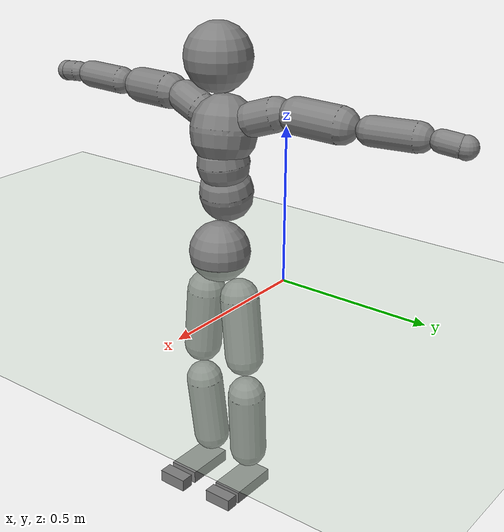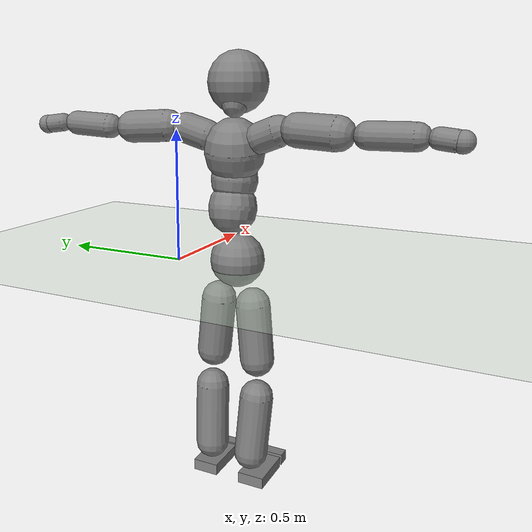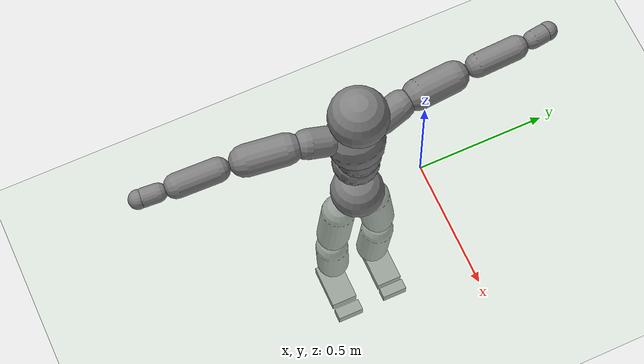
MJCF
<mujoco model="humanoid">
  <compiler coordinate="local"/>
  <statistic extent="2" center="0 0 1"/>
  <option timestep="0.00555"/>
  <default>
    <motor ctrlrange="-1 1" ctrllimited="true"/>
    <geom type="capsule" condim="1" friction="1.0 0.05 0.05" solimp=".9 .99 .003" solref=".015 1"/>
    <joint type="hinge" damping="0.1" stiffness="5" armature=".007" limited="true" solimplimit="0 .99 .01"/>
    <site size=".04" group="3"/>
    <default class="force-torque">
      <site type="box" size=".01 .01 .02" rgba="1 0 0 1"/>
    </default>
    <default class="touch">
      <site type="capsule" rgba="0 0 1 .3"/>
    </default>
  </default>
  <asset>
    <texture type="skybox" builtin="gradient" rgb1=".4 .5 .6" rgb2="0 0 0" width="100" height="100"/>
    <texture builtin="flat" height="1278" mark="cross" markrgb="1 1 1" name="texgeom" random="0.01" rgb1="0.8 0.6 0.4" rgb2="0.8 0.6 0.4" type="cube" width="127"/>
    <texture builtin="checker" height="100" name="texplane" rgb1="0 0 0" rgb2="0.8 0.8 0.8" type="2d" width="100"/>
    <material name="MatPlane" reflectance="0.5" shininess="1" specular="1" texrepeat="60 60" texture="texplane"/>
    <material name="geom" texture="texgeom" texuniform="true"/>
  </asset>
  <worldbody>
    <light cutoff="100" diffuse="1 1 1" dir="-0 0 -1.3" directional="true" exponent="1" pos="0 0 1.3" specular=".1 .1 .1"/>
    <geom conaffinity="1" condim="3" name="floor" pos="0 0 0" rgba="0.8 0.9 0.8 1" size="100 100 .2" type="plane" material="MatPlane"/>
    <body name="Pelvis" pos="-0.0023 -0.2585 0.0324">
      <freejoint name="Pelvis"/>
      <geom type="sphere" contype="1" conaffinity="1" density="500" size="0.1024" pos="0.0000 0.0000 0.0000"/>
      <body name="L_Hip" pos="-0.0168 0.0624 -0.0841">
        <joint name="L_Hip_x" type="hinge" pos="0 0 0" axis="1 0 0" stiffness="800" damping="80" armature="0.02" range="-180.0000 180.0000"/>
        <joint name="L_Hip_y" type="hinge" pos="0 0 0" axis="0 1 0" stiffness="800" damping="80" armature="0.02" range="-180.0000 180.0000"/>
        <joint name="L_Hip_z" type="hinge" pos="0 0 0" axis="0 0 1" stiffness="800" damping="80" armature="0.02" range="-180.0000 180.0000"/>
        <geom type="capsule" contype="1" conaffinity="1" density="500" fromto="0.0009 0.0075 -0.0721 0.0035 0.0299 -0.2883" size="0.0656"/>
        <body name="L_Knee" pos="0.0043 0.0374 -0.3604">
          <joint name="L_Knee_x" type="hinge" pos="0 0 0" axis="1 0 0" stiffness="800" damping="80" armature="0.02" range="-5.6250 5.6250"/>
          <joint name="L_Knee_y" type="hinge" pos="0 0 0" axis="0 1 0" stiffness="800" damping="80" armature="0.02" range="-180.0000 180.0000"/>
          <joint name="L_Knee_z" type="hinge" pos="0 0 0" axis="0 0 1" stiffness="800" damping="80" armature="0.02" range="-5.6250 5.6250"/>
          <geom type="capsule" contype="1" conaffinity="1" density="500" fromto="-0.0080 -0.0032 -0.0798 -0.0321 -0.0126 -0.3193" size="0.0647"/>
          <body name="L_Ankle" pos="-0.0401 -0.0158 -0.3992">
            <joint name="L_Ankle_x" type="hinge" pos="0 0 0" axis="1 0 0" stiffness="800" damping="80" armature="0.02" range="-180.0000 180.0000"/>
            <joint name="L_Ankle_y" type="hinge" pos="0 0 0" axis="0 1 0" stiffness="800" damping="80" armature="0.02" range="-180.0000 180.0000"/>
            <joint name="L_Ankle_z" type="hinge" pos="0 0 0" axis="0 0 1" stiffness="800" damping="80" armature="0.02" range="-180.0000 180.0000"/>
            <geom type="box" contype="1" conaffinity="1" density="500" pos="0.0606 0.0170 -0.0287" size="0.0891 0.051 0.0224" quat="1.0000 0.0000 0.0000 0.0000"/>
            <body name="L_Toe" pos="0.1212 0.034 -0.0575">
              <joint name="L_Toe_x" type="hinge" pos="0 0 0" axis="1 0 0" stiffness="500" damping="50" armature="0.02" range="-5.6250 5.6250"/>
              <joint name="L_Toe_y" type="hinge" pos="0 0 0" axis="0 1 0" stiffness="500" damping="50" armature="0.02" range="-90.0000 90.0000"/>
              <joint name="L_Toe_z" type="hinge" pos="0 0 0" axis="0 0 1" stiffness="500" damping="50" armature="0.02" range="-5.6250 5.6250"/>
              <geom type="box" contype="1" conaffinity="1" density="500" pos="0.0616 -0.0170 0.0279" size="0.0215 0.0506 0.0216" quat="1.0000 0.0000 0.0000 0.0000"/>
            </body>
          </body>
        </body>
      </body>
      <body name="R_Hip" pos="-0.0121 -0.0649 -0.0919">
        <joint name="R_Hip_x" type="hinge" pos="0 0 0" axis="1 0 0" stiffness="800" damping="80" armature="0.02" range="-180.0000 180.0000"/>
        <joint name="R_Hip_y" type="hinge" pos="0 0 0" axis="0 1 0" stiffness="800" damping="80" armature="0.02" range="-180.0000 180.0000"/>
        <joint name="R_Hip_z" type="hinge" pos="0 0 0" axis="0 0 1" stiffness="800" damping="80" armature="0.02" range="-180.0000 180.0000"/>
        <geom type="capsule" contype="1" conaffinity="1" density="500" fromto="-0.0014 -0.0074 -0.0721 -0.0057 -0.0297 -0.2886" size="0.0653"/>
        <body name="R_Knee" pos="-0.0072 -0.0372 -0.3607">
          <joint name="R_Knee_x" type="hinge" pos="0 0 0" axis="1 0 0" stiffness="800" damping="80" armature="0.02" range="-5.6250 5.6250"/>
          <joint name="R_Knee_y" type="hinge" pos="0 0 0" axis="0 1 0" stiffness="800" damping="80" armature="0.02" range="-180.0000 180.0000"/>
          <joint name="R_Knee_z" type="hinge" pos="0 0 0" axis="0 0 1" stiffness="800" damping="80" armature="0.02" range="-5.6250 5.6250"/>
          <geom type="capsule" contype="1" conaffinity="1" density="500" fromto="-0.0074 0.0038 -0.0787 -0.0296 0.0153 -0.3147" size="0.0646"/>
          <body name="R_Ankle" pos="-0.0369 0.0191 -0.3934">
            <joint name="R_Ankle_x" type="hinge" pos="0 0 0" axis="1 0 0" stiffness="800" damping="80" armature="0.02" range="-180.0000 180.0000"/>
            <joint name="R_Ankle_y" type="hinge" pos="0 0 0" axis="0 1 0" stiffness="800" damping="80" armature="0.02" range="-180.0000 180.0000"/>
            <joint name="R_Ankle_z" type="hinge" pos="0 0 0" axis="0 0 1" stiffness="800" damping="80" armature="0.02" range="-180.0000 180.0000"/>
            <geom type="box" contype="1" conaffinity="1" density="500" pos="0.0643 -0.0174 -0.0295" size="0.0888 0.0527 0.0222" quat="1.0000 0.0000 0.0000 0.0000"/>
            <body name="R_Toe" pos="0.1286 -0.0348 -0.0589">
              <joint name="R_Toe_x" type="hinge" pos="0 0 0" axis="1 0 0" stiffness="500" damping="50" armature="0.02" range="-5.6250 5.6250"/>
              <joint name="R_Toe_y" type="hinge" pos="0 0 0" axis="0 1 0" stiffness="500" damping="50" armature="0.02" range="-90.0000 90.0000"/>
              <joint name="R_Toe_z" type="hinge" pos="0 0 0" axis="0 0 1" stiffness="500" damping="50" armature="0.02" range="-5.6250 5.6250"/>
              <geom type="box" contype="1" conaffinity="1" density="500" pos="0.0653 0.0174 0.0294" size="0.0232 0.0523 0.0222" quat="1.0000 0.0000 0.0000 0.0000"/>
            </body>
          </body>
        </body>
      </body>
      <body name="Torso" pos="-0.0417 0.0042 0.1275">
        <joint name="Torso_x" type="hinge" pos="0 0 0" axis="1 0 0" stiffness="1000" damping="100" armature="0.02" range="-180.0000 180.0000"/>
        <joint name="Torso_y" type="hinge" pos="0 0 0" axis="0 1 0" stiffness="1000" damping="100" armature="0.02" range="-180.0000 180.0000"/>
        <joint name="Torso_z" type="hinge" pos="0 0 0" axis="0 0 1" stiffness="1000" damping="100" armature="0.02" range="-180.0000 180.0000"/>
        <geom type="capsule" contype="1" conaffinity="1" density="500" fromto="0.0123 0.0023 0.0646 0.0151 0.0028 0.0790" size="0.0887"/>
        <body name="Spine" pos="0.0274 0.005 0.1436">
          <joint name="Spine_x" type="hinge" pos="0 0 0" axis="1 0 0" stiffness="1000" damping="100" armature="0.02" range="-180.0000 180.0000"/>
          <joint name="Spine_y" type="hinge" pos="0 0 0" axis="0 1 0" stiffness="1000" damping="100" armature="0.02" range="-180.0000 180.0000"/>
          <joint name="Spine_z" type="hinge" pos="0 0 0" axis="0 0 1" stiffness="1000" damping="100" armature="0.02" range="-180.0000 180.0000"/>
          <geom type="capsule" contype="1" conaffinity="1" density="500" fromto="0.0024 -0.0010 0.0265 0.0029 -0.0013 0.0324" size="0.086"/>
          <body name="Chest" pos="0.0053 -0.0023 0.0589">
            <joint name="Chest_x" type="hinge" pos="0 0 0" axis="1 0 0" stiffness="1000" damping="100" armature="0.02" range="-180.0000 180.0000"/>
            <joint name="Chest_y" type="hinge" pos="0 0 0" axis="0 1 0" stiffness="1000" damping="100" armature="0.02" range="-180.0000 180.0000"/>
            <joint name="Chest_z" type="hinge" pos="0 0 0" axis="0 0 1" stiffness="1000" damping="100" armature="0.02" range="-180.0000 180.0000"/>
            <geom type="capsule" contype="1" conaffinity="1" density="500" fromto="-0.0127 -0.0039 0.0675 -0.0155 -0.0048 0.0825" size="0.1093"/>
            <body name="Neck" pos="-0.0398 -0.0143 0.219">
              <joint name="Neck_x" type="hinge" pos="0 0 0" axis="1 0 0" stiffness="500" damping="50" armature="0.02" range="-180.0000 180.0000"/>
              <joint name="Neck_y" type="hinge" pos="0 0 0" axis="0 1 0" stiffness="500" damping="50" armature="0.02" range="-180.0000 180.0000"/>
              <joint name="Neck_z" type="hinge" pos="0 0 0" axis="0 0 1" stiffness="500" damping="50" armature="0.02" range="-180.0000 180.0000"/>
              <geom type="capsule" contype="1" conaffinity="1" density="500" fromto="0.0103 0.0020 0.0180 0.0412 0.0079 0.0720" size="0.0472"/>
              <body name="Head" pos="0.0515 0.0098 0.09">
                <joint name="Head_x" type="hinge" pos="0 0 0" axis="1 0 0" stiffness="500" damping="50" armature="0.02" range="-180.0000 180.0000"/>
                <joint name="Head_y" type="hinge" pos="0 0 0" axis="0 1 0" stiffness="500" damping="50" armature="0.02" range="-180.0000 180.0000"/>
                <joint name="Head_z" type="hinge" pos="0 0 0" axis="0 0 1" stiffness="500" damping="50" armature="0.02" range="-180.0000 180.0000"/>
                <geom type="sphere" contype="1" conaffinity="1" density="500" size="0.1089" pos="0.0000 0.0000 0.0000"/>
              </body>
            </body>
            <body name="L_Thorax" pos="-0.0192 0.0739 0.1162">
              <joint name="L_Thorax_x" type="hinge" pos="0 0 0" axis="1 0 0" stiffness="500" damping="50" armature="0.02" range="-180.0000 180.0000"/>
              <joint name="L_Thorax_y" type="hinge" pos="0 0 0" axis="0 1 0" stiffness="500" damping="50" armature="0.02" range="-180.0000 180.0000"/>
              <joint name="L_Thorax_z" type="hinge" pos="0 0 0" axis="0 0 1" stiffness="500" damping="50" armature="0.02" range="-180.0000 180.0000"/>
              <geom type="capsule" contype="1" conaffinity="1" density="500" fromto="-0.0046 0.0257 0.0085 -0.0184 0.1029 0.0340" size="0.0553"/>
              <body name="L_Shoulder" pos="-0.023 0.1286 0.0425">
                <joint name="L_Shoulder_x" type="hinge" pos="0 0 0" axis="1 0 0" stiffness="500" damping="50" armature="0.02" range="-720.0000 720.0000"/>
                <joint name="L_Shoulder_y" type="hinge" pos="0 0 0" axis="0 1 0" stiffness="500" damping="50" armature="0.02" range="-720.0000 720.0000"/>
                <joint name="L_Shoulder_z" type="hinge" pos="0 0 0" axis="0 0 1" stiffness="500" damping="50" armature="0.02" range="-720.0000 720.0000"/>
                <geom type="capsule" contype="1" conaffinity="1" density="500" fromto="-0.0047 0.0479 -0.0026 -0.0189 0.1916 -0.0103" size="0.0585"/>
                <body name="L_Elbow" pos="-0.0236 0.2395 -0.0128">
                  <joint name="L_Elbow_x" type="hinge" pos="0 0 0" axis="1 0 0" stiffness="500" damping="50" armature="0.02" range="-720.0000 720.0000"/>
                  <joint name="L_Elbow_y" type="hinge" pos="0 0 0" axis="0 1 0" stiffness="500" damping="50" armature="0.02" range="-720.0000 720.0000"/>
                  <joint name="L_Elbow_z" type="hinge" pos="0 0 0" axis="0 0 1" stiffness="500" damping="50" armature="0.02" range="-720.0000 720.0000"/>
                  <geom type="capsule" contype="1" conaffinity="1" density="500" fromto="-0.0011 0.0504 0.0024 -0.0043 0.2017 0.0098" size="0.0452"/>
                  <body name="L_Wrist" pos="-0.0054 0.2521 0.0122">
                    <joint name="L_Wrist_x" type="hinge" pos="0 0 0" axis="1 0 0" stiffness="300" damping="30" armature="0.02" range="-180.0000 180.0000"/>
                    <joint name="L_Wrist_y" type="hinge" pos="0 0 0" axis="0 1 0" stiffness="300" damping="30" armature="0.02" range="-180.0000 180.0000"/>
                    <joint name="L_Wrist_z" type="hinge" pos="0 0 0" axis="0 0 1" stiffness="300" damping="30" armature="0.02" range="-180.0000 180.0000"/>
                    <geom type="capsule" contype="1" conaffinity="1" density="500" fromto="-0.0030 0.0170 -0.0021 -0.0120 0.0682 -0.0086" size="0.0343"/>
                    <body name="L_Hand" pos="-0.015 0.0852 -0.0107">
                      <joint name="L_Hand_x" type="hinge" pos="0 0 0" axis="1 0 0" stiffness="300" damping="30" armature="0.02" range="-180.0000 180.0000"/>
                      <joint name="L_Hand_y" type="hinge" pos="0 0 0" axis="0 1 0" stiffness="300" damping="30" armature="0.02" range="-180.0000 180.0000"/>
                      <joint name="L_Hand_z" type="hinge" pos="0 0 0" axis="0 0 1" stiffness="300" damping="30" armature="0.02" range="-180.0000 180.0000"/>
                      <geom type="sphere" contype="1" conaffinity="1" density="500" size="0.0353" pos="0.0000 0.0000 0.0000"/>
                    </body>
                  </body>
                </body>
              </body>
            </body>
            <body name="R_Thorax" pos="-0.0254 -0.0856 0.1148">
              <joint name="R_Thorax_x" type="hinge" pos="0 0 0" axis="1 0 0" stiffness="500" damping="50" armature="0.02" range="-180.0000 180.0000"/>
              <joint name="R_Thorax_y" type="hinge" pos="0 0 0" axis="0 1 0" stiffness="500" damping="50" armature="0.02" range="-180.0000 180.0000"/>
              <joint name="R_Thorax_z" type="hinge" pos="0 0 0" axis="0 0 1" stiffness="500" damping="50" armature="0.02" range="-180.0000 180.0000"/>
              <geom type="capsule" contype="1" conaffinity="1" density="500" fromto="-0.0023 -0.0236 0.0088 -0.0092 -0.0942 0.0354" size="0.055"/>
              <body name="R_Shoulder" pos="-0.0115 -0.1178 0.0442">
                <joint name="R_Shoulder_x" type="hinge" pos="0 0 0" axis="1 0 0" stiffness="500" damping="50" armature="0.02" range="-720.0000 720.0000"/>
                <joint name="R_Shoulder_y" type="hinge" pos="0 0 0" axis="0 1 0" stiffness="500" damping="50" armature="0.02" range="-720.0000 720.0000"/>
                <joint name="R_Shoulder_z" type="hinge" pos="0 0 0" axis="0 0 1" stiffness="500" damping="50" armature="0.02" range="-720.0000 720.0000"/>
                <geom type="capsule" contype="1" conaffinity="1" density="500" fromto="-0.0070 -0.0489 -0.0017 -0.0278 -0.1958 -0.0070" size="0.0588"/>
                <body name="R_Elbow" pos="-0.0348 -0.2447 -0.0087">
                  <joint name="R_Elbow_x" type="hinge" pos="0 0 0" axis="1 0 0" stiffness="500" damping="50" armature="0.02" range="-720.0000 720.0000"/>
                  <joint name="R_Elbow_y" type="hinge" pos="0 0 0" axis="0 1 0" stiffness="500" damping="50" armature="0.02" range="-720.0000 720.0000"/>
                  <joint name="R_Elbow_z" type="hinge" pos="0 0 0" axis="0 0 1" stiffness="500" damping="50" armature="0.02" range="-720.0000 720.0000"/>
                  <geom type="capsule" contype="1" conaffinity="1" density="500" fromto="-0.0010 -0.0505 0.0006 -0.0040 -0.2020 0.0022" size="0.0458"/>
                  <body name="R_Wrist" pos="-0.005 -0.2526 0.0028">
                    <joint name="R_Wrist_x" type="hinge" pos="0 0 0" axis="1 0 0" stiffness="300" damping="30" armature="0.02" range="-180.0000 180.0000"/>
                    <joint name="R_Wrist_y" type="hinge" pos="0 0 0" axis="0 1 0" stiffness="300" damping="30" armature="0.02" range="-180.0000 180.0000"/>
                    <joint name="R_Wrist_z" type="hinge" pos="0 0 0" axis="0 0 1" stiffness="300" damping="30" armature="0.02" range="-180.0000 180.0000"/>
                    <geom type="capsule" contype="1" conaffinity="1" density="500" fromto="-0.0019 -0.0175 -0.0017 -0.0076 -0.0698 -0.0069" size="0.0349"/>
                    <body name="R_Hand" pos="-0.0095 -0.0873 -0.0087">
                      <joint name="R_Hand_x" type="hinge" pos="0 0 0" axis="1 0 0" stiffness="300" damping="30" armature="0.02" range="-180.0000 180.0000"/>
                      <joint name="R_Hand_y" type="hinge" pos="0 0 0" axis="0 1 0" stiffness="300" damping="30" armature="0.02" range="-180.0000 180.0000"/>
                      <joint name="R_Hand_z" type="hinge" pos="0 0 0" axis="0 0 1" stiffness="300" damping="30" armature="0.02" range="-180.0000 180.0000"/>
                      <geom type="sphere" contype="1" conaffinity="1" density="500" size="0.0357" pos="0.0000 0.0000 0.0000"/>
                    </body>
                  </body>
                </body>
              </body>
            </body>
          </body>
        </body>
      </body>
    </body>
  </worldbody>
  <actuator>
    <motor name="L_Hip_x" joint="L_Hip_x" gear="500"/>
    <motor name="L_Hip_y" joint="L_Hip_y" gear="500"/>
    <motor name="L_Hip_z" joint="L_Hip_z" gear="500"/>
    <motor name="L_Knee_x" joint="L_Knee_x" gear="500"/>
    <motor name="L_Knee_y" joint="L_Knee_y" gear="500"/>
    <motor name="L_Knee_z" joint="L_Knee_z" gear="500"/>
    <motor name="L_Ankle_x" joint="L_Ankle_x" gear="500"/>
    <motor name="L_Ankle_y" joint="L_Ankle_y" gear="500"/>
    <motor name="L_Ankle_z" joint="L_Ankle_z" gear="500"/>
    <motor name="L_Toe_x" joint="L_Toe_x" gear="500"/>
    <motor name="L_Toe_y" joint="L_Toe_y" gear="500"/>
    <motor name="L_Toe_z" joint="L_Toe_z" gear="500"/>
    <motor name="R_Hip_x" joint="R_Hip_x" gear="500"/>
    <motor name="R_Hip_y" joint="R_Hip_y" gear="500"/>
    <motor name="R_Hip_z" joint="R_Hip_z" gear="500"/>
    <motor name="R_Knee_x" joint="R_Knee_x" gear="500"/>
    <motor name="R_Knee_y" joint="R_Knee_y" gear="500"/>
    <motor name="R_Knee_z" joint="R_Knee_z" gear="500"/>
    <motor name="R_Ankle_x" joint="R_Ankle_x" gear="500"/>
    <motor name="R_Ankle_y" joint="R_Ankle_y" gear="500"/>
    <motor name="R_Ankle_z" joint="R_Ankle_z" gear="500"/>
    <motor name="R_Toe_x" joint="R_Toe_x" gear="500"/>
    <motor name="R_Toe_y" joint="R_Toe_y" gear="500"/>
    <motor name="R_Toe_z" joint="R_Toe_z" gear="500"/>
    <motor name="Torso_x" joint="Torso_x" gear="500"/>
    <motor name="Torso_y" joint="Torso_y" gear="500"/>
    <motor name="Torso_z" joint="Torso_z" gear="500"/>
    <motor name="Spine_x" joint="Spine_x" gear="500"/>
    <motor name="Spine_y" joint="Spine_y" gear="500"/>
    <motor name="Spine_z" joint="Spine_z" gear="500"/>
    <motor name="Chest_x" joint="Chest_x" gear="500"/>
    <motor name="Chest_y" joint="Chest_y" gear="500"/>
    <motor name="Chest_z" joint="Chest_z" gear="500"/>
    <motor name="Neck_x" joint="Neck_x" gear="500"/>
    <motor name="Neck_y" joint="Neck_y" gear="500"/>
    <motor name="Neck_z" joint="Neck_z" gear="500"/>
    <motor name="Head_x" joint="Head_x" gear="500"/>
    <motor name="Head_y" joint="Head_y" gear="500"/>
    <motor name="Head_z" joint="Head_z" gear="500"/>
    <motor name="L_Thorax_x" joint="L_Thorax_x" gear="500"/>
    <motor name="L_Thorax_y" joint="L_Thorax_y" gear="500"/>
    <motor name="L_Thorax_z" joint="L_Thorax_z" gear="500"/>
    <motor name="L_Shoulder_x" joint="L_Shoulder_x" gear="500"/>
    <motor name="L_Shoulder_y" joint="L_Shoulder_y" gear="500"/>
    <motor name="L_Shoulder_z" joint="L_Shoulder_z" gear="500"/>
    <motor name="L_Elbow_x" joint="L_Elbow_x" gear="500"/>
    <motor name="L_Elbow_y" joint="L_Elbow_y" gear="500"/>
    <motor name="L_Elbow_z" joint="L_Elbow_z" gear="500"/>
    <motor name="L_Wrist_x" joint="L_Wrist_x" gear="500"/>
    <motor name="L_Wrist_y" joint="L_Wrist_y" gear="500"/>
    <motor name="L_Wrist_z" joint="L_Wrist_z" gear="500"/>
    <motor name="L_Hand_x" joint="L_Hand_x" gear="500"/>
    <motor name="L_Hand_y" joint="L_Hand_y" gear="500"/>
    <motor name="L_Hand_z" joint="L_Hand_z" gear="500"/>
    <motor name="R_Thorax_x" joint="R_Thorax_x" gear="500"/>
    <motor name="R_Thorax_y" joint="R_Thorax_y" gear="500"/>
    <motor name="R_Thorax_z" joint="R_Thorax_z" gear="500"/>
    <motor name="R_Shoulder_x" joint="R_Shoulder_x" gear="500"/>
    <motor name="R_Shoulder_y" joint="R_Shoulder_y" gear="500"/>
    <motor name="R_Shoulder_z" joint="R_Shoulder_z" gear="500"/>
    <motor name="R_Elbow_x" joint="R_Elbow_x" gear="500"/>
    <motor name="R_Elbow_y" joint="R_Elbow_y" gear="500"/>
    <motor name="R_Elbow_z" joint="R_Elbow_z" gear="500"/>
    <motor name="R_Wrist_x" joint="R_Wrist_x" gear="500"/>
    <motor name="R_Wrist_y" joint="R_Wrist_y" gear="500"/>
    <motor name="R_Wrist_z" joint="R_Wrist_z" gear="500"/>
    <motor name="R_Hand_x" joint="R_Hand_x" gear="500"/>
    <motor name="R_Hand_y" joint="R_Hand_y" gear="500"/>
    <motor name="R_Hand_z" joint="R_Hand_z" gear="500"/>
  </actuator>
  <contact/>
  <size njmax="7000" nconmax="200"/>
</mujoco>
